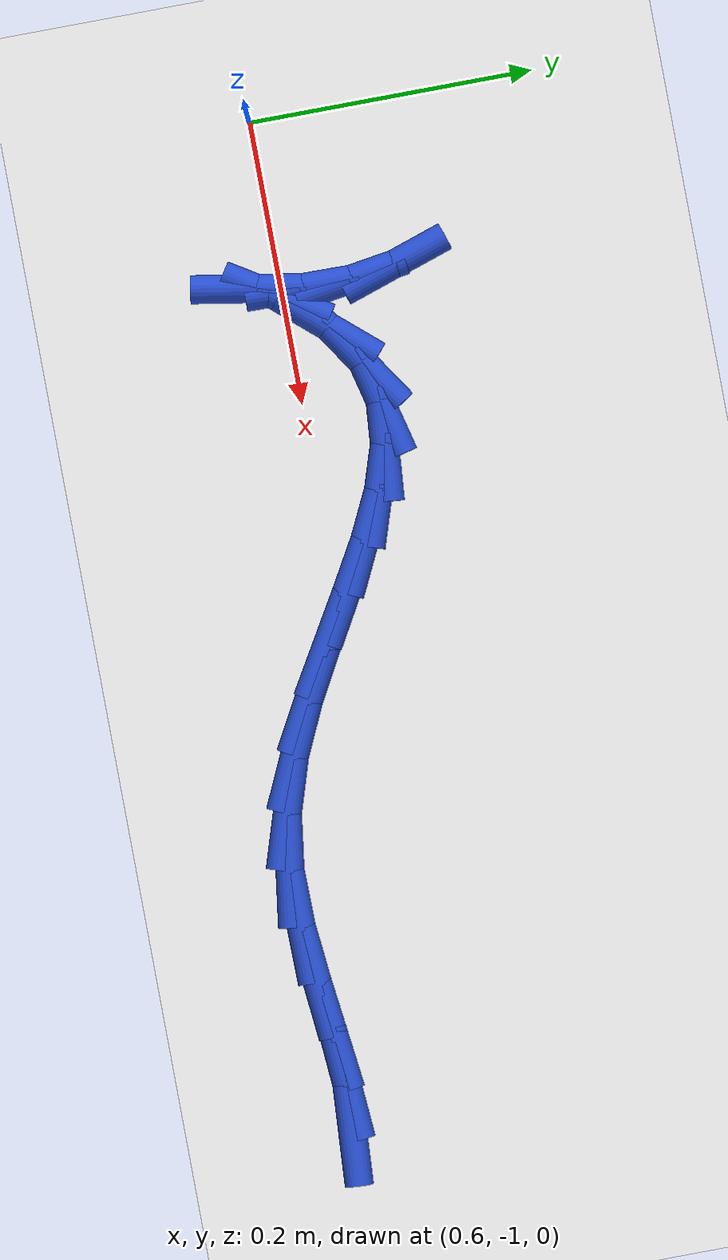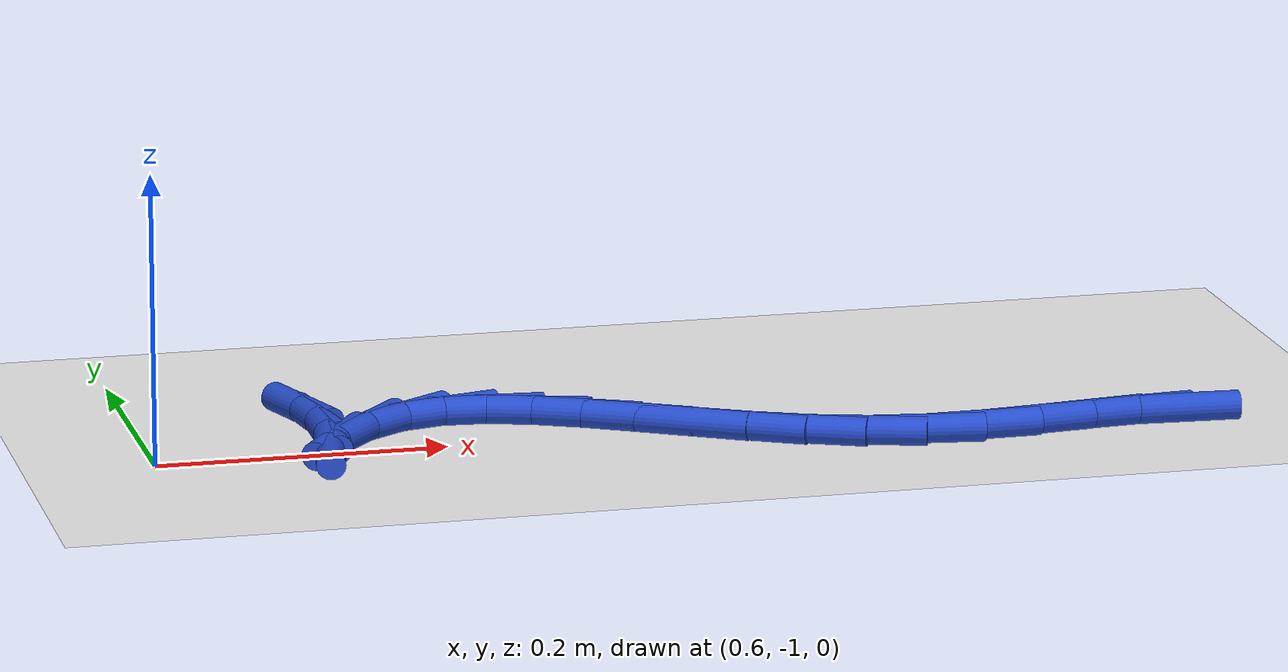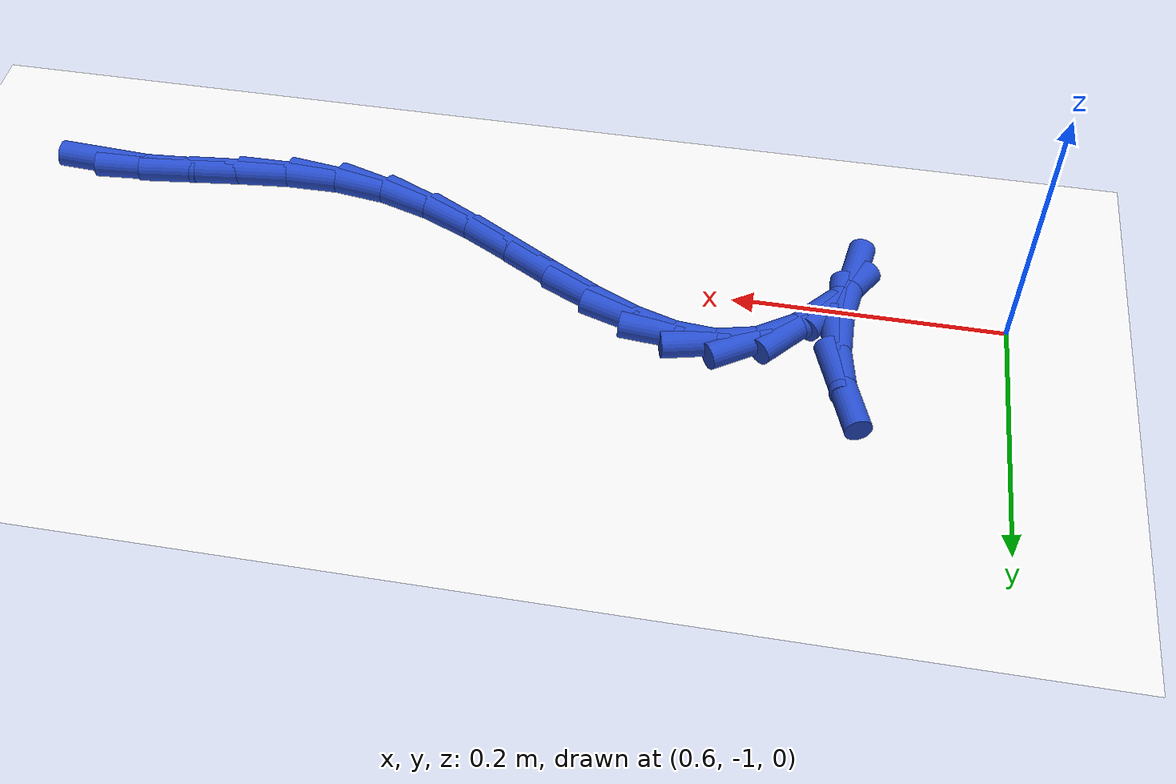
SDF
<sdf version="1.6">
 <world name="default">
  <model name="ground_plane">
   <static>1</static>
   <link name="link">
    <collision name="collision">
     <geometry><plane><normal>0 0 1</normal><size>100 100</size></plane></geometry>
     <surface><friction><ode><mu>100</mu><mu2>50</mu2></ode></friction></surface>
    </collision>
    <visual name="visual">
     <cast_shadows>0</cast_shadows>
     <geometry><plane><normal>0 0 1</normal><size>100 100</size></plane></geometry>
     <material>
      <script><uri>file://media/materials/scripts/gazebo.material</uri><name>Gazebo/WhiteGlow</name></script>
     </material>
    </visual>
   </link>
  </model>
  <model name="line">
   <link name="link_196">
    <pose>1.300412738614555 -1.057700752639189 0.01 0 1.57 -0.06053571899051693</pose>
    <collision name="collision">
     <geometry><cylinder><radius>0.01</radius><length>0.08</length></cylinder></geometry>
    </collision>
    <visual name="visual">
     <material>
      <script><name>Gazebo/Blue</name><uri>file://media/materials/scripts/gazebo.material</uri></script>
     </material>
     <geometry><cylinder><radius>0.01</radius><length>0.08</length></cylinder></geometry>
    </visual>
   </link>
   <link name="link_197">
    <pose>1.2691208117249737 -1.0558041560410731 0.01 0 1.57 0.07522963744526309</pose>
    <collision name="collision">
     <geometry><cylinder><radius>0.01</radius><length>0.08</length></cylinder></geometry>
    </collision>
    <visual name="visual">
     <material>
      <script><name>Gazebo/Blue</name><uri>file://media/materials/scripts/gazebo.material</uri></script>
     </material>
     <geometry><cylinder><radius>0.01</radius><length>0.08</length></cylinder></geometry>
    </visual>
   </link>
   <link name="link_198">
    <pose>1.2339110430031526 -1.0584579825086677 0.01 0 1.57 0.1197463579648356</pose>
    <collision name="collision">
     <geometry><cylinder><radius>0.01</radius><length>0.08</length></cylinder></geometry>
    </collision>
    <visual name="visual">
     <material>
      <script><name>Gazebo/Blue</name><uri>file://media/materials/scripts/gazebo.material</uri></script>
     </material>
     <geometry><cylinder><radius>0.01</radius><length>0.08</length></cylinder></geometry>
    </visual>
   </link>
   <link name="link_199">
    <pose>1.195944124221156 -1.0630262386891036 0.01 0 1.57 0.09692396529463586</pose>
    <collision name="collision">
     <geometry><cylinder><radius>0.01</radius><length>0.08</length></cylinder></geometry>
    </collision>
    <visual name="visual">
     <material>
      <script><name>Gazebo/Blue</name><uri>file://media/materials/scripts/gazebo.material</uri></script>
     </material>
     <geometry><cylinder><radius>0.01</radius><length>0.08</length></cylinder></geometry>
    </visual>
   </link>
   <link name="link_200">
    <pose>1.1563807471510492 -1.0668729312295118 0.01 0 1.57 0.012228041005087254</pose>
    <collision name="collision">
     <geometry><cylinder><radius>0.01</radius><length>0.08</length></cylinder></geometry>
    </collision>
    <visual name="visual">
     <material>
      <script><name>Gazebo/Blue</name><uri>file://media/materials/scripts/gazebo.material</uri></script>
     </material>
     <geometry><cylinder><radius>0.01</radius><length>0.08</length></cylinder></geometry>
    </visual>
   </link>
   <link name="link_201">
    <pose>1.116381603564898 -1.0673620667770234 0.01 0 1.57 -0.13810638068123898</pose>
    <collision name="collision">
     <geometry><cylinder><radius>0.01</radius><length>0.08</length></cylinder></geometry>
    </collision>
    <visual name="visual">
     <material>
      <script><name>Gazebo/Blue</name><uri>file://media/materials/scripts/gazebo.material</uri></script>
     </material>
     <geometry><cylinder><radius>0.01</radius><length>0.08</length></cylinder></geometry>
    </visual>
   </link>
   <link name="link_202">
    <pose>1.077095840632918 -1.0619016921026938 0.01 0 1.57 -0.3091054057857299</pose>
    <collision name="collision">
     <geometry><cylinder><radius>0.01</radius><length>0.08</length></cylinder></geometry>
    </collision>
    <visual name="visual">
     <material>
      <script><name>Gazebo/Blue</name><uri>file://media/materials/scripts/gazebo.material</uri></script>
     </material>
     <geometry><cylinder><radius>0.01</radius><length>0.08</length></cylinder></geometry>
    </visual>
   </link>
   <link name="link_203">
    <pose>1.0391764784555453 -1.0497924699308978 0.01 0 1.57 -0.4326107420025689</pose>
    <collision name="collision">
     <geometry><cylinder><radius>0.01</radius><length>0.08</length></cylinder></geometry>
    </collision>
    <visual name="visual">
     <material>
      <script><name>Gazebo/Blue</name><uri>file://media/materials/scripts/gazebo.material</uri></script>
     </material>
     <geometry><cylinder><radius>0.01</radius><length>0.08</length></cylinder></geometry>
    </visual>
   </link>
   <link name="link_204">
    <pose>1.0026032482765246 -1.0329035122986636 0.01 0 1.57 -0.5072687768081673</pose>
    <collision name="collision">
     <geometry><cylinder><radius>0.01</radius><length>0.08</length></cylinder></geometry>
    </collision>
    <visual name="visual">
     <material>
      <script><name>Gazebo/Blue</name><uri>file://media/materials/scripts/gazebo.material</uri></script>
     </material>
     <geometry><cylinder><radius>0.01</radius><length>0.08</length></cylinder></geometry>
    </visual>
   </link>
   <link name="link_205">
    <pose>0.9673078655658741 -1.0132871008882773 0.01 0 1.57 -0.5369628409749041</pose>
    <collision name="collision">
     <geometry><cylinder><radius>0.01</radius><length>0.08</length></cylinder></geometry>
    </collision>
    <visual name="visual">
     <material>
      <script><name>Gazebo/Blue</name><uri>file://media/materials/scripts/gazebo.material</uri></script>
     </material>
     <geometry><cylinder><radius>0.01</radius><length>0.08</length></cylinder></geometry>
    </visual>
   </link>
   <link name="link_206">
    <pose>0.9332220457936072 -0.992995517382023 0.01 0 1.57 -0.5211807626415177</pose>
    <collision name="collision">
     <geometry><cylinder><radius>0.01</radius><length>0.08</length></cylinder></geometry>
    </collision>
    <visual name="visual">
     <material>
      <script><name>Gazebo/Blue</name><uri>file://media/materials/scripts/gazebo.material</uri></script>
     </material>
     <geometry><cylinder><radius>0.01</radius><length>0.08</length></cylinder></geometry>
    </visual>
   </link>
   <link name="link_207">
    <pose>0.9002775044297394 -0.9740810434621858 0.01 0 1.57 -0.45227105936270345</pose>
    <collision name="collision">
     <geometry><cylinder><radius>0.01</radius><length>0.08</length></cylinder></geometry>
    </collision>
    <visual name="visual">
     <material>
      <script><name>Gazebo/Blue</name><uri>file://media/materials/scripts/gazebo.material</uri></script>
     </material>
     <geometry><cylinder><radius>0.01</radius><length>0.08</length></cylinder></geometry>
    </visual>
   </link>
   <link name="link_208">
    <pose>0.8684059569442864 -0.9585959608110511 0.01 0 1.57 -0.31340205171763563</pose>
    <collision name="collision">
     <geometry><cylinder><radius>0.01</radius><length>0.08</length></cylinder></geometry>
    </collision>
    <visual name="visual">
     <material>
      <script><name>Gazebo/Blue</name><uri>file://media/materials/scripts/gazebo.material</uri></script>
     </material>
     <geometry><cylinder><radius>0.01</radius><length>0.08</length></cylinder></geometry>
    </visual>
   </link>
   <link name="link_209">
    <pose>0.8375391188072632 -0.9485925511109035 0.01 0 1.57 -0.08232009198276914</pose>
    <collision name="collision">
     <geometry><cylinder><radius>0.01</radius><length>0.08</length></cylinder></geometry>
    </collision>
    <visual name="visual">
     <material>
      <script><name>Gazebo/Blue</name><uri>file://media/materials/scripts/gazebo.material</uri></script>
     </material>
     <geometry><cylinder><radius>0.01</radius><length>0.08</length></cylinder></geometry>
    </visual>
   </link>
   <link name="link_210">
    <pose>0.8076087054886851 -0.946123096044028 0.01 0 1.57 0.24015444876220873</pose>
    <collision name="collision">
     <geometry><cylinder><radius>0.01</radius><length>0.08</length></cylinder></geometry>
    </collision>
    <visual name="visual">
     <material>
      <script><name>Gazebo/Blue</name><uri>file://media/materials/scripts/gazebo.material</uri></script>
     </material>
     <geometry><cylinder><radius>0.01</radius><length>0.08</length></cylinder></geometry>
    </visual>
   </link>
   <link name="link_211">
    <pose>0.7785464324585677 -0.9532398772927094 0.01 0 1.57 0.5858853429731458</pose>
    <collision name="collision">
     <geometry><cylinder><radius>0.01</radius><length>0.08</length></cylinder></geometry>
    </collision>
    <visual name="visual">
     <material>
      <script><name>Gazebo/Blue</name><uri>file://media/materials/scripts/gazebo.material</uri></script>
     </material>
     <geometry><cylinder><radius>0.01</radius><length>0.08</length></cylinder></geometry>
    </visual>
   </link>
   <link name="link_212">
    <pose>0.7502840151869259 -0.9719951765392327 0.01 0 1.57 0.8566381531309722</pose>
    <collision name="collision">
     <geometry><cylinder><radius>0.01</radius><length>0.08</length></cylinder></geometry>
    </collision>
    <visual name="visual">
     <material>
      <script><name>Gazebo/Blue</name><uri>file://media/materials/scripts/gazebo.material</uri></script>
     </material>
     <geometry><cylinder><radius>0.01</radius><length>0.08</length></cylinder></geometry>
    </visual>
   </link>
   <link name="link_213">
    <pose>0.7229452470939343 -1.0035356086629355 0.01 0 1.57 1.008410237048032</pose>
    <collision name="collision">
     <geometry><cylinder><radius>0.01</radius><length>0.08</length></cylinder></geometry>
    </collision>
    <visual name="visual">
     <material>
      <script><name>Gazebo/Blue</name><uri>file://media/materials/scripts/gazebo.material</uri></script>
     </material>
     <geometry><cylinder><radius>0.01</radius><length>0.08</length></cylinder></geometry>
    </visual>
   </link>
   <link name="link_222">
    <pose>0.7141685295016738 -1.0219025162948345 0.01 0 1.57 1.4046930657016679</pose>
    <collision name="collision">
     <geometry><cylinder><radius>0.01</radius><length>0.08</length></cylinder></geometry>
    </collision>
    <visual name="visual">
     <material>
      <script><name>Gazebo/Blue</name><uri>file://media/materials/scripts/gazebo.material</uri></script>
     </material>
     <geometry><cylinder><radius>0.01</radius><length>0.08</length></cylinder></geometry>
    </visual>
   </link>
   <link name="link_223">
    <pose>0.7203494472169483 -0.9850340743499058 0.01 0 1.57 1.5577621223199958</pose>
    <collision name="collision">
     <geometry><cylinder><radius>0.01</radius><length>0.08</length></cylinder></geometry>
    </collision>
    <visual name="visual">
     <material>
      <script><name>Gazebo/Blue</name><uri>file://media/materials/scripts/gazebo.material</uri></script>
     </material>
     <geometry><cylinder><radius>0.01</radius><length>0.08</length></cylinder></geometry>
    </visual>
   </link>
   <link name="link_224">
    <pose>0.7207960600939574 -0.9507713323603215 0.01 0 1.57 -1.418852932436377</pose>
    <collision name="collision">
     <geometry><cylinder><radius>0.01</radius><length>0.08</length></cylinder></geometry>
    </collision>
    <visual name="visual">
     <material>
      <script><name>Gazebo/Blue</name><uri>file://media/materials/scripts/gazebo.material</uri></script>
     </material>
     <geometry><cylinder><radius>0.01</radius><length>0.08</length></cylinder></geometry>
    </visual>
   </link>
   <link name="link_225">
    <pose>0.7159185483726533 -0.9189179012074083 0.01 0 1.57 -1.2517418771986961</pose>
    <collision name="collision">
     <geometry><cylinder><radius>0.01</radius><length>0.08</length></cylinder></geometry>
    </collision>
    <visual name="visual">
     <material>
      <script><name>Gazebo/Blue</name><uri>file://media/materials/scripts/gazebo.material</uri></script>
     </material>
     <geometry><cylinder><radius>0.01</radius><length>0.08</length></cylinder></geometry>
    </visual>
   </link>
  </model>
 </world>
</sdf>
